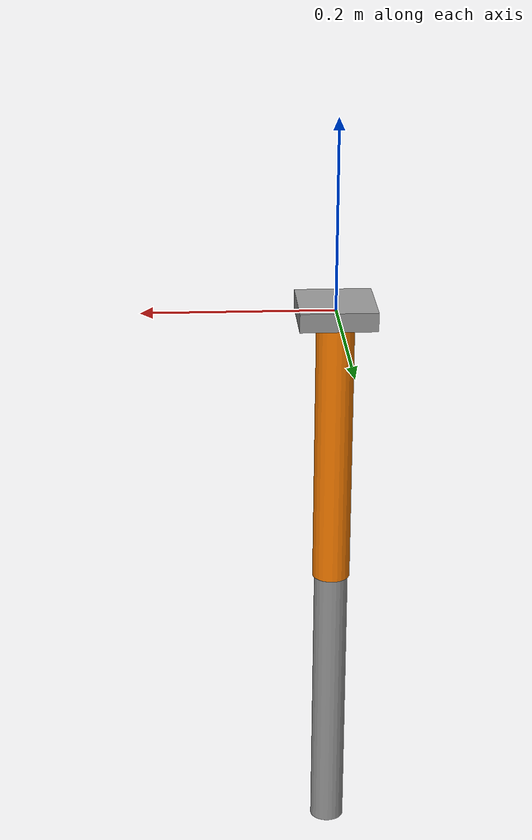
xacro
<?xml version="1.0"?>
<!-- URDF -> Unified Robot Description Format -->
<robot name="pierna_encoder" xmlns:xacro="http://www.ros.org/wiki/xacro">

  <!-- Colores -->
  <material name="gris">
    <color rgba="0.6 0.6 0.6 1"/>
  </material>
  <material name="naranja">
    <color rgba="1.0 0.5 0.0 1"/>
  </material>

  <!-- Base fija (cadera  en el aire ,la referencia) -->
  <link name="base_link">
    <visual>
      <geometry>
        <box size="0.08 0.08 0.02"/>
      </geometry>
      <material name="gris"/>
    </visual>
  </link>

  <!-- Muslo -->
  <link name="muslo_link">
    <visual>
      <origin xyz="0 0 -0.15" rpy="0 0 0"/>
      <geometry>
        <cylinder radius="0.02" length="0.3"/>
      </geometry>
      <material name="naranja"/>
    </visual>
  </link>

  <!-- Joint cadera potenciometro -->
  <joint name="joint_cadera" type="revolute">
    <parent link="base_link"/>
    <child link="muslo_link"/>
    <origin xyz="0 0 0" rpy="0 0 0"/>
    <axis xyz="0 1 0"/>
      <!-- Limits Joint definido en radianes pto cero esta en el medio(abajo) -->
    <limit lower="-1.57" upper="1.57" effort="10" velocity="1"/>
  </joint>

  <!-- Pierna-->
  <link name="pierna_link">
    <visual>
      <origin xyz="0 0 -0.15" rpy="0 0 0"/>
      <geometry>
        <cylinder radius="0.018" length="0.3"/>
      </geometry>
      <material name="gris"/>
    </visual>
  </link>

  <!-- Joint rodilla el AS5600 -->
  <joint name="joint_rodilla" type="revolute">
    <parent link="muslo_link"/>
    <child link="pierna_link"/>
    <origin xyz="0 0 -0.3" rpy="0 0 0"/>
    <axis xyz="0 1 0"/>
      <!-- Limits Joint definido en radianes  0 a 120 grados pero puesto en radianes-->
    <limit lower="0" upper="2.09" effort="10" velocity="1"/>
  </joint>

      <!-- Los limites del Joint son solo ilustrativos quein realiza el mapping es la funcion climp en calibracion!!-->

</robot>
